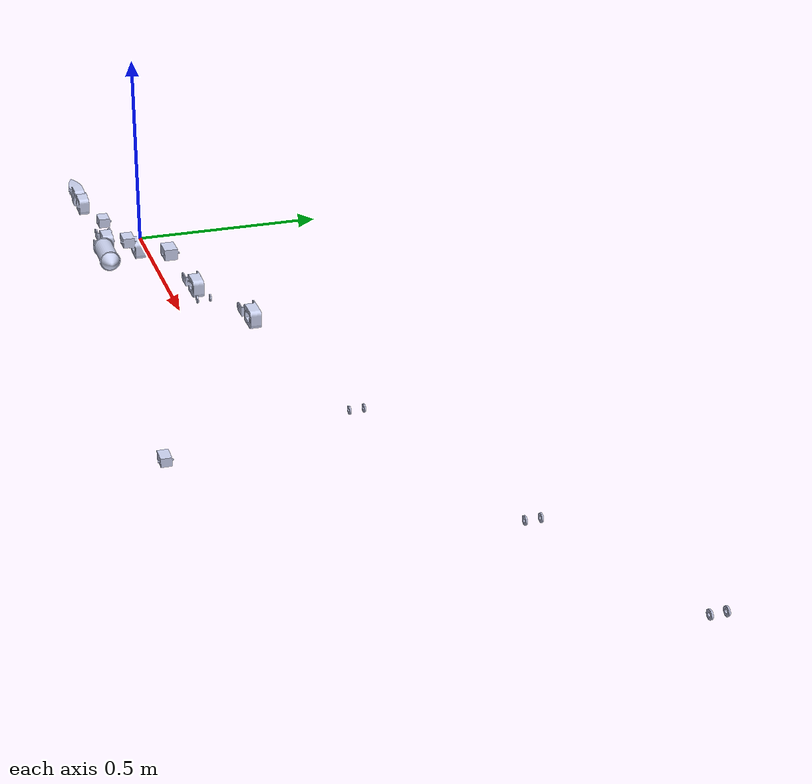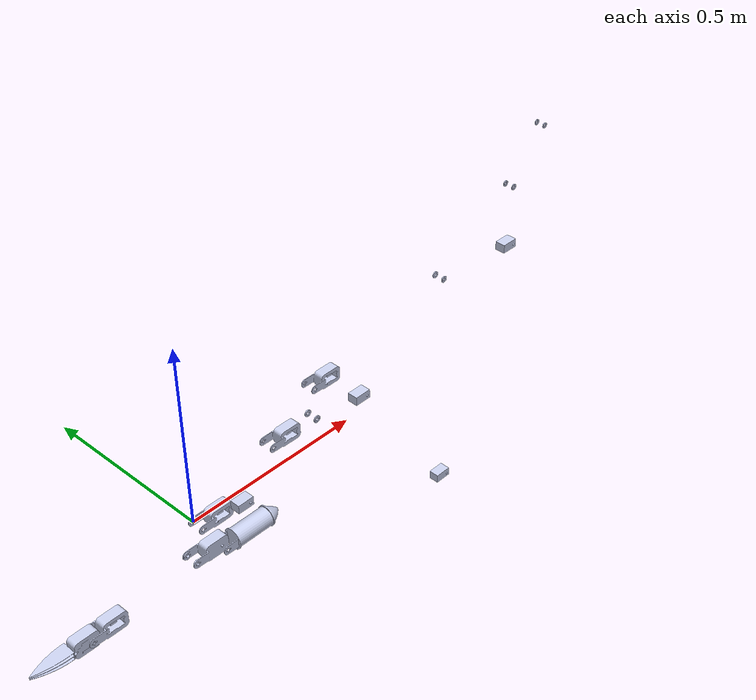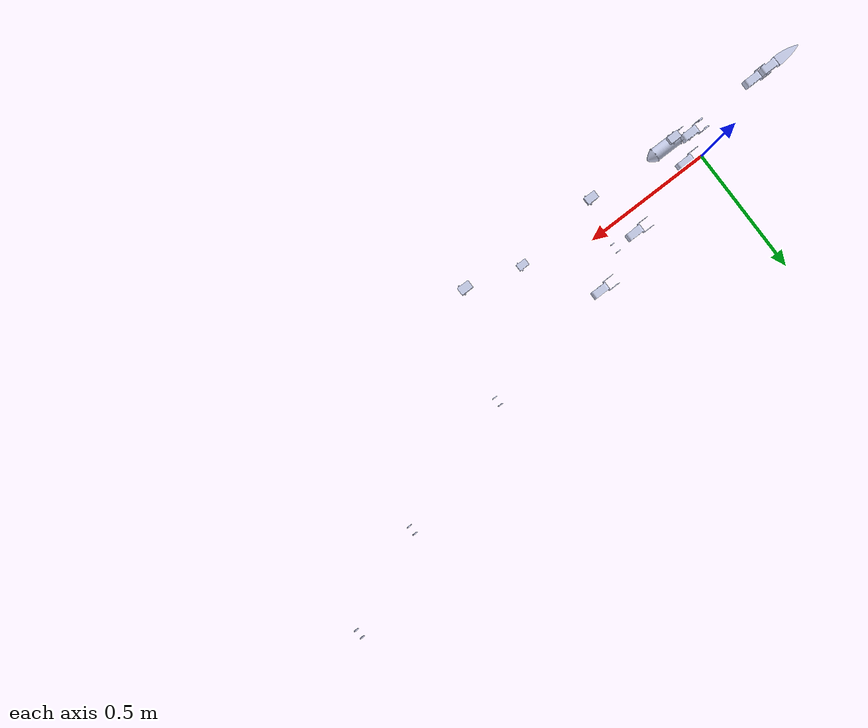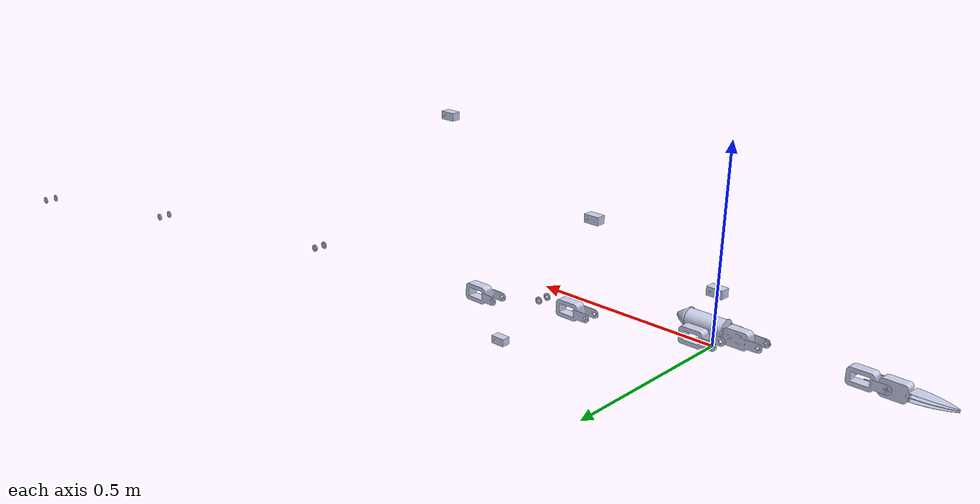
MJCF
<mujoco model="bus_assembly_3">
  <compiler angle="radian" meshdir="meshes/"/>

  <option timestep="0.001" tolerance="1e-10" iterations="50"/>

  <asset>
    <mesh name="base_link" content_type="model/stl" file="base_link.STL"/>
    <mesh name="link1" content_type="model/stl" file="link1.STL"/>
    <mesh name="link2" content_type="model/stl" file="link2.STL"/>
    <mesh name="link3" content_type="model/stl" file="link3.STL"/>
    <mesh name="link4" content_type="model/stl" file="link4.STL"/>
    <mesh name="link5" content_type="model/stl" file="link5.STL"/>
    <mesh name="link6" content_type="model/stl" file="link6.STL"/>
  </asset>

  <worldbody>
    <geom type="mesh" contype="0" conaffinity="0" group="1" density="0" rgba="0.792157 0.819608 0.933333 1" mesh="base_link"/>
    <geom type="mesh" rgba="0.792157 0.819608 0.933333 1" mesh="base_link"/>
    <body name="link1" pos="-0.00278 -0.09 -0.0021213" quat="0.707105 0.707108 0 0">
      <inertial pos="-0.0144943 3.40933e-08 0.0168296" quat="2.58782e-06 0.707709 -2.58342e-06 0.706505" mass="0.0861354" diaginertia="4.97204e-05 4.35087e-05 1.99776e-05"/>
      <joint name="joint1" pos="0 0 0" axis="0 0 1" range="-2.094 2.094" actuatorfrcrange="-1.5 1.5"/>
      <geom type="mesh" contype="0" conaffinity="0" group="1" density="0" rgba="0.792157 0.819608 0.933333 1" mesh="link1"/>
      <geom type="mesh" rgba="0.792157 0.819608 0.933333 1" mesh="link1"/>
      <body name="link2" pos="-0.0747 0 0">
        <inertial pos="-0.0144943 3.40933e-08 0.0168296" quat="2.58782e-06 0.707709 -2.58342e-06 0.706505" mass="0.0861354" diaginertia="4.97204e-05 4.35087e-05 1.99776e-05"/>
        <joint name="joint2" pos="0 0 0" axis="0 0 -1" range="-2.094 2.094" actuatorfrcrange="-1.5 1.5"/>
        <geom type="mesh" contype="0" conaffinity="0" group="1" density="0" rgba="0.792157 0.819608 0.933333 1" mesh="link2"/>
        <geom type="mesh" rgba="0.792157 0.819608 0.933333 1" mesh="link2"/>
        <body name="link3" pos="-0.0747 0 0">
          <inertial pos="-0.0144943 3.40933e-08 0.0168296" quat="2.58782e-06 0.707709 -2.58342e-06 0.706505" mass="0.0861354" diaginertia="4.97204e-05 4.35087e-05 1.99776e-05"/>
          <joint name="joint3" pos="0 0 0" axis="0 0 -1" range="-2.094 2.094" actuatorfrcrange="-1.5 1.5"/>
          <geom type="mesh" contype="0" conaffinity="0" group="1" density="0" rgba="0.792157 0.819608 0.933333 1" mesh="link3"/>
          <geom type="mesh" rgba="0.792157 0.819608 0.933333 1" mesh="link3"/>
          <body name="link4" pos="-0.0747 0 0">
            <inertial pos="-0.0144943 3.40933e-08 0.0168296" quat="2.58782e-06 0.707709 -2.58342e-06 0.706505" mass="0.0861354" diaginertia="4.97204e-05 4.35087e-05 1.99776e-05"/>
            <joint name="joint4" pos="0 0 0" axis="0 0 -1" range="-2.094 2.094" actuatorfrcrange="-1.5 1.5"/>
            <geom type="mesh" contype="0" conaffinity="0" group="1" density="0" rgba="0.792157 0.819608 0.933333 1" mesh="link4"/>
            <geom type="mesh" rgba="0.792157 0.819608 0.933333 1" mesh="link4"/>
            <body name="link5" pos="-0.0747 0 0">
              <inertial pos="-0.0144943 3.40933e-08 0.0168296" quat="2.58782e-06 0.707709 -2.58342e-06 0.706505" mass="0.0861354" diaginertia="4.97204e-05 4.35087e-05 1.99776e-05"/>
              <joint name="joint5" pos="0 0 0" axis="0 0 1" range="-2.094 2.094" actuatorfrcrange="-1.5 1.5"/>
              <geom type="mesh" contype="0" conaffinity="0" group="1" density="0" rgba="0.792157 0.819608 0.933333 1" mesh="link5"/>
              <geom type="mesh" rgba="0.792157 0.819608 0.933333 1" mesh="link5"/>
              <body name="link6" pos="-0.0747 0 0">
                <inertial pos="-0.0197354 -7.68144e-07 0.016811" quat="0 0.707027 0 0.707186" mass="0.0915951" diaginertia="4.72146e-05 4.01858e-05 1.94083e-05"/>
                <joint name="joint6" pos="0 0 0" axis="0 0 -1" range="-2.094 2.094" actuatorfrcrange="-1.5 1.5"/>
                <geom type="mesh" contype="0" conaffinity="0" group="1" density="0" rgba="0.792157 0.819608 0.933333 1" mesh="link6"/>
                <geom type="mesh" rgba="0.792157 0.819608 0.933333 1" mesh="link6"/>
              </body>
            </body>
          </body>
        </body>
      </body>
    </body>
  </worldbody>

      <actuator>
        <position joint="joint1" kp="100"/>
        <position joint="joint2" kp="100"/>
        <position joint="joint3" kp="100"/>
        <position joint="joint4" kp="100"/>
        <position joint="joint5" kp="100"/>
        <position joint="joint6" kp="100"/>
    </actuator>
</mujoco>
